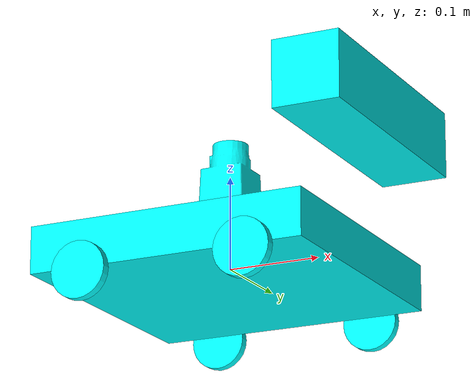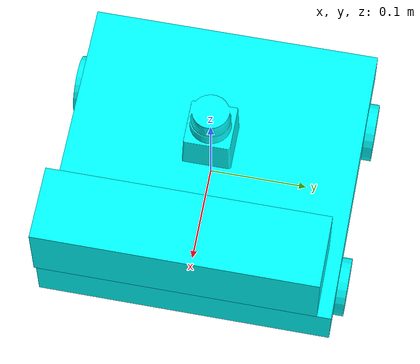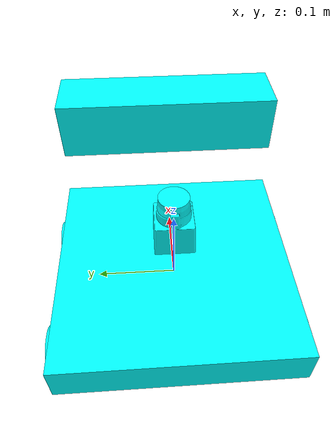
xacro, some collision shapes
<?xml version="1.0"?>

<robot name="simple4wd"
  xmlns:xacro="http://www.ros.org/wiki/xacro">

  <!-- Import urdf.xacro files -->
  <xacro:include filename="$(find simple4wd_description)/urdf/wheel.urdf.xacro" />
  <xacro:include filename="$(find simple4wd_description)/urdf/accessories/hokuyo_laser.urdf.xacro" />
  <xacro:include filename="$(find simple4wd_description)/urdf/accessories/kinect_camera.urdf.xacro" />

  <!-- Gazebo Plugins -->
  <gazebo>
    <plugin name="gazebo_ros_control" filename="libgazebo_ros_control.so">
      <robotNamespace>/simple4wd</robotNamespace>
    </plugin>
  </gazebo>

  <gazebo>
    <plugin name="imu_plugin" filename="libgazebo_ros_imu.so">
      <alwaysOn>true</alwaysOn>
      <bodyName>chassis_link</bodyName>
      <topicName>imu</topicName>
      <serviceName>imu_service</serviceName>
      <gaussianNoise>0.0</gaussianNoise>
      <updateRate>20.0</updateRate>
    </plugin>
  </gazebo>

  <!-- Constants -->
  <xacro:property name="BASE_WIDTH" value="0.3"/>
  <xacro:property name="BASE_LENGTH" value="0.3"/>
  <xacro:property name="BASE_HEIGHT" value="0.05"/>
  <xacro:property name="BASE_MASS" value="10"/>

  <xacro:property name="WHEEL_WIDTH" value="0.01"/>
  <xacro:property name="WHEEL_RADIUS" value="0.03"/>
  <xacro:property name="WHEEL_MASS" value="2"/>

  <xacro:property name="PI" value="3.14159"/>

  <!-- Materials -->
  <material name="cyan">
    <color rgba="0 1.0 1.0 1.0"/>
  </material>

  <!-- Dummy link that doesn't have inertia -->
  <link name="base_link" />

  <joint name="base_link_joint" type="fixed">
    <parent link="base_link"/>
    <child link="chassis_link" />
    <origin xyz="0 0 0" rpy="0 0 0" />
  </joint>

  <!-- Robot Base (front is facing positive x) -->
  <link name="chassis_link">
    <visual>
      <geometry>
        <box size="${BASE_WIDTH} ${BASE_LENGTH} ${BASE_HEIGHT}"/>
      </geometry>
      <material name="cyan"/>
    </visual>

    <collision>
      <geometry>
        <box size="${BASE_WIDTH} ${BASE_LENGTH} ${BASE_HEIGHT}"/>
      </geometry>
    </collision>

    <inertial>
      <mass value="${BASE_MASS}"/>
      <inertia
        ixx="${BASE_MASS / 12.0 * (BASE_LENGTH * BASE_LENGTH + BASE_HEIGHT * BASE_HEIGHT)}" ixy="0" ixz="0"
        iyy="${BASE_MASS / 12.0 * (BASE_WIDTH * BASE_WIDTH + BASE_HEIGHT * BASE_HEIGHT)}" iyz="0"
        izz="${BASE_MASS / 12.0 * (BASE_WIDTH * BASE_WIDTH + BASE_LENGTH * BASE_LENGTH)}"
      />
    </inertial>
  </link>

  <!-- Wheels -->
  <xacro:wheel
    name_link="left_front_wheel" parent_link="chassis_link"
    mass="${WHEEL_MASS}" radius="${WHEEL_RADIUS}" width="${WHEEL_WIDTH}"
    translate_x="${BASE_WIDTH/2 - 2*WHEEL_RADIUS}"
    translate_y="${BASE_LENGTH/2 + WHEEL_WIDTH/2}"
    translate_z="${-WHEEL_RADIUS}"
  />

  <xacro:wheel
    name_link="right_back_wheel" parent_link="chassis_link"
    mass="${WHEEL_MASS}" radius="${WHEEL_RADIUS}" width="${WHEEL_WIDTH}"
    translate_x="${-(BASE_WIDTH/2 - 2*WHEEL_RADIUS)}"
    translate_y="${-(BASE_LENGTH/2 + WHEEL_WIDTH/2)}"
    translate_z="${-WHEEL_RADIUS}"
  />

  <xacro:wheel
    name_link="right_front_wheel" parent_link="chassis_link"
    mass="${WHEEL_MASS}" radius="${WHEEL_RADIUS}" width="${WHEEL_WIDTH}"
    translate_x="${BASE_WIDTH/2 - 2*WHEEL_RADIUS}"
    translate_y="${-(BASE_LENGTH/2 + WHEEL_WIDTH/2)}"
    translate_z="${-WHEEL_RADIUS}"
  />

  <xacro:wheel
    name_link="left_back_wheel" parent_link="chassis_link"
    mass="${WHEEL_MASS}" radius="${WHEEL_RADIUS}" width="${WHEEL_WIDTH}"
    translate_x="${-(BASE_WIDTH/2 - 2*WHEEL_RADIUS)}"
    translate_y="${BASE_LENGTH/2 + WHEEL_WIDTH/2}"
    translate_z="${-WHEEL_RADIUS}"
  />

  <!-- Sensors -->
  <xacro:hokuyo_laser
    prefix="chassis" parent_link="chassis_link"
    trans_x="0" trans_y="0" trans_z="${BASE_HEIGHT * 2}"
  />

  <xacro:kinect_camera prefix="kinect" parent_link="chassis_link">
    <origin xyz="${BASE_LENGTH/2} 0 ${BASE_HEIGHT + 0.1}" rpq="${PI} ${-PI/4} 0" />
  </xacro:kinect_camera>

</robot>

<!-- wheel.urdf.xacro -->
<!-- Reference: https://github.com/qboticslabs/mastering_ros_robot_description_pkg/blob/master/urdf/wheel.urdf.xacro -->

<robot name="wheel"
  xmlns:xacro="http://www.ros.org/wiki/xacro">

  <xacro:macro name="wheel" params="name_link parent_link mass radius width translate_x translate_y translate_z">
    <link name="${name_link}_link">
      <visual>
        <origin xyz="0 0 0" rpy="${PI/2} 0 0" />
        <geometry>
          <cylinder length="${width}" radius="${radius}" />
        </geometry>
        <material name="cyan"/>
      </visual>

      <collision>
        <origin xyz="0 0 0" rpy="${PI/2} 0 0 " />
        <geometry>
          <cylinder length="${width}" radius="${radius}" />
        </geometry>
      </collision>

      <inertial>
        <mass value="${mass}" />
        <origin xyz="0 0 0" />
        <inertia
          ixx="${mass*(3*radius*radius+width*width)/12}" ixy="0" ixz="0"
          iyy="${mass*(3*radius*radius+width*width)/12}" iyz="0"
          izz="${mass*radius*radius/2}" />
      </inertial>
    </link>

    <joint name="${name_link}_joint" type="continuous">
      <parent link="${parent_link}"/>
      <child link="${name_link}_link"/>
      <origin xyz="${translate_x} ${translate_y} ${translate_z}" rpy="0 0 0" />
      <axis xyz="0 1 0" rpy="0 0 0" />
    </joint>

    <transmission name="${name_link}_trans">
			<type>transmission_interface/SimpleTransmission</type>
			<actuator name="${name_link}_motor">
				<mechanicalReduction>1</mechanicalReduction>
			</actuator>
			<joint name="${name_link}_joint">
				<hardwareInterface>hardware_interface/VelocityJointInterface</hardwareInterface>
			</joint>
		</transmission>

    <gazebo reference="${name_link}_link">
      <material>Gazebo/Grey</material>
			<mu1 value="1"/>
			<mu2 value="1"/>
			<kp value="10000000.0" />
			<kd value="1.0" />
			<fdir1 value="1 0 0"/>
		</gazebo>

  </xacro:macro>

</robot>

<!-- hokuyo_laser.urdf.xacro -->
<robot name="simple4wd"
  xmlns:xacro="http://www.ros.org/wiki/xacro">

  <xacro:macro name="hokuyo_laser" params="prefix parent_link trans_x trans_y trans_z">

    <link name="${prefix}_hokuyo_link">
      <collision>
        <origin xyz="0 0 0" rpy="0 0 0"/>
        <geometry>
          <box size="0.1 0.1 0.1"/>
        </geometry>
      </collision>

      <visual>
        <origin xyz="0 0 0" rpy="0 0 0"/>
        <geometry>
          <mesh filename="package://simple4wd_description/meshes/hokuyo.dae"/>
        </geometry>
        <material name="cyan"/>
      </visual>

      <inertial>
        <mass value="1" />
        <origin xyz="0 0 0" rpy="0 0 0"/>
        <inertia
          ixx="1e-5" ixy="0" ixz="0"
          iyy="1e-5" iyz="0"
          izz="1e-5"
        />
      </inertial>
    </link>

    <joint name="${prefix}_hokuyo_joint" type="fixed">
      <origin xyz="${trans_x} ${trans_y} ${trans_z}" rpy="0 0 0"/>
      <parent link="${parent_link}"/>
      <child link="${prefix}_hokuyo_link"/>
    </joint>

    <gazebo reference="${prefix}_hokuyo_link">
      <sensor type="ray" name="${prefix}_hokuyo_laser">
        <pose>0 0 0 0 0 0</pose>
        <visualize>false</visualize>
        <update_rate>40</update_rate>
        <ray>
          <scan>
            <horizontal>
              <samples>720</samples>
              <resolution>1</resolution>
              <min_angle>-1.570796</min_angle>
              <max_angle>1.570796</max_angle>
            </horizontal>
          </scan>
          <range>
            <min>0.10</min>
            <max>30.0</max>
            <resolution>0.01</resolution>
          </range>
          <noise>
            <type>gaussian</type>
            <mean>0.0</mean>
            <stddev>0.01</stddev>
          </noise>
        </ray>
        <plugin name="gazebo_ros_laser" filename="libgazebo_ros_laser.so">
          <topicName>/simple4wd/laser/scan</topicName>
          <frameName>${prefix}_hokuyo_link</frameName>
          <robotNamespace>simple4wd</robotNamespace>
        </plugin>
      </sensor>
    </gazebo>

  </xacro:macro>

</robot>

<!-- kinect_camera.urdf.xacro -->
<robot name="simple4wd"
  xmlns:xacro="http://www.ros.org/wiki/xacro">

  <xacro:macro name="kinect_camera" params="prefix parent_link *origin">
    <link name="${prefix}_camera_link">
      <collision>
        <origin xyz="0 0 0" rpy="0 0 0"/>
        <geometry>
          <box size="0.073000 0.276000 0.072000"/>
        </geometry>
      </collision>

      <visual>
        <origin xyz="0 0 0" rpy="0 0 0"/>
        <geometry>
          <mesh filename="package://simple4wd_description/meshes/kinect.dae"/>
        </geometry>
        <material name="cyan"/>
      </visual>

      <inertial>
        <mass value="0.1" />
        <origin xyz="0 0 0" rpy="0 0 0"/>
        <inertia
          ixx="1e-5" ixy="0" ixz="0"
          iyy="1e-5" iyz="0"
          izz="1e-5"
        />
      </inertial>
    </link>

    <joint name="${prefix}_camera_joint" type="fixed">
      <xacro:insert_block name="origin"/>
      <parent link="${parent_link}"/>
      <child link="${prefix}_camera_link"/>
    </joint>

    <!-- Fixes bug with depth camera frame
      https://answers.ros.org/question/218395/libgazebo_ros_openni_kinectso-depth-pointcloud-wrong-tf/ -->
    <link name="${prefix}_camera_depth_link"/>
    <joint name="${prefix}_camera_depth_joint" type="fixed">
      <origin xyz="0 0 0" rpy="${-PI/2} 0 ${-PI/2}"/>
      <parent link="${prefix}_camera_link"/>
      <child link="${prefix}_camera_depth_link"/>
    </joint>

    <gazebo reference="${prefix}_camera_link">
      <sensor name="${prefix}_camera" type="depth">
        <update_rate>20</update_rate>
        <camera>
          <horizontal_fov>1.047198</horizontal_fov>
          <image>
            <width>640</width>
            <height>480</height>
            <format>R8G8B8</format>
          </image>
          <clip>
            <near>0.05</near>
            <far>3</far>
          </clip>
        </camera>
        <plugin name="${prefix}_camera_controller" filename="libgazebo_ros_openni_kinect.so">
          <baseline>0.2</baseline>
          <alwaysOn>true</alwaysOn>
          <updateRate>1.0</updateRate>
          <cameraName>${prefix}_camera</cameraName>
          <imageTopicName>/simple4wd/${prefix}_camera/color/image_raw</imageTopicName>
          <cameraInfoTopicName>/simple4wd/${prefix}_camera/color/camera_info</cameraInfoTopicName>
          <depthImageTopicName>/simple4wd/${prefix}_camera/depth/image_raw</depthImageTopicName>
          <depthImageInfoTopicName>/simple4wd/${prefix}_camera/depth/camera_info</depthImageInfoTopicName>
          <pointCloudTopicName>/simple4wd/${prefix}_camera/depth/points</pointCloudTopicName>
          <frameName>${prefix}_camera_depth_link</frameName>
          <pointCloudCutoff>0.5</pointCloudCutoff>
          <pointCloudCutoffMax>3.0</pointCloudCutoffMax>
          <distortionK1>0.00000001</distortionK1>
          <distortionK2>0.00000001</distortionK2>
          <distortionK3>0.00000001</distortionK3>
          <distortionT1>0.00000001</distortionT1>
          <distortionT2>0.00000001</distortionT2>
          <CxPrime>0</CxPrime>
          <Cx>0</Cx>
          <Cy>0</Cy>
          <focalLength>0</focalLength>
          <hackBaseline>0</hackBaseline>
        </plugin>
      </sensor>
    </gazebo>
  </xacro:macro>

</robot>
